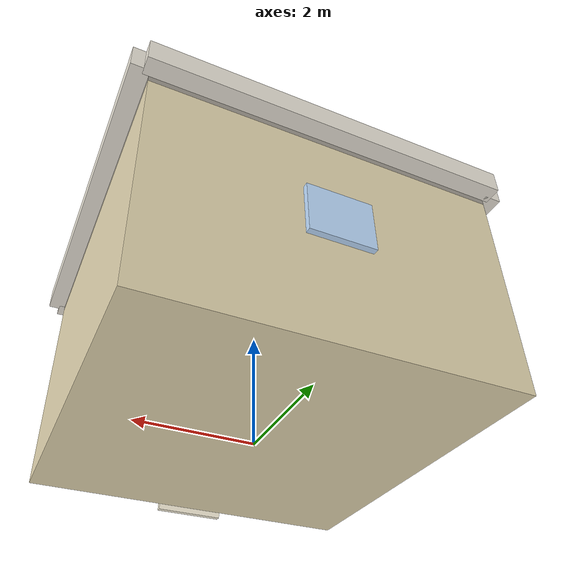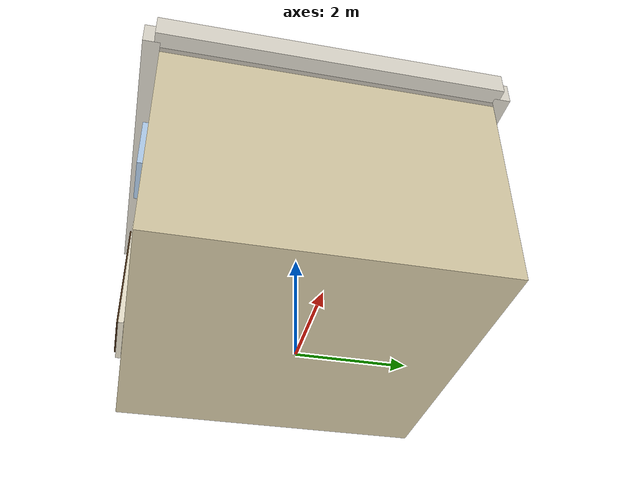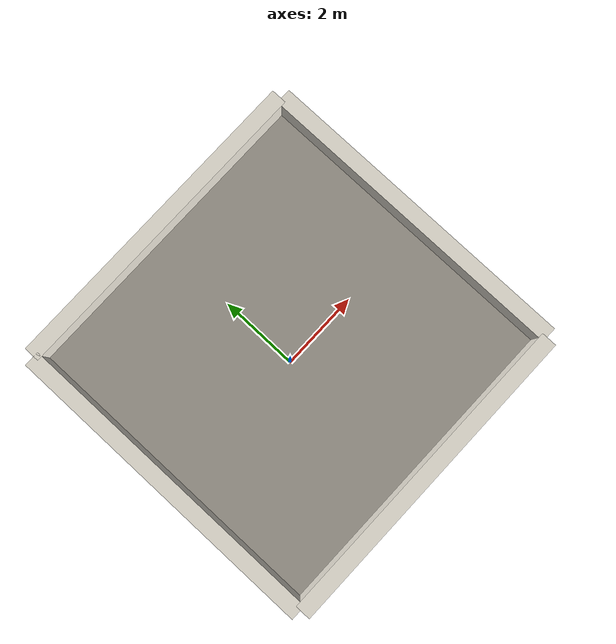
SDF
<?xml version="1.0" ?>
<!-- House Type B: 6x6m cream residential, flat roof with parapet, front faces -Y -->
<sdf version="1.6">
  <model name="house_type_b">
    <static>true</static>
    <link name="link">

      <collision name="col">
        <pose>0 0 2.15 0 0 0</pose>
        <geometry><box><size>6 6 4.3</size></box></geometry>
      </collision>

      <!-- Main walls 6x6x3.8m -->
      <visual name="walls">
        <pose>0 0 1.9 0 0 0</pose>
        <geometry><box><size>6 6 3.8</size></box></geometry>
        <material>
          <ambient>0.90 0.85 0.70 1</ambient>
          <diffuse>0.90 0.85 0.70 1</diffuse>
          <specular>0.05 0.05 0.05 1</specular>
        </material>
      </visual>

      <visual name="roof_surface">
        <pose>0 0 3.85 0 0 0</pose>
        <geometry><box><size>6.0 6.0 0.1</size></box></geometry>
        <material><ambient>0.62 0.60 0.56 1</ambient><diffuse>0.62 0.60 0.56 1</diffuse></material>
      </visual>

      <!-- Parapet: front at Y=-3.0 → parapet at Y=-3.15 -->
      <visual name="parapet_front">
        <pose>0 -3.15 4.1 0 0 0</pose>
        <geometry><box><size>6.2 0.3 0.4</size></box></geometry>
        <material><ambient>0.93 0.91 0.86 1</ambient><diffuse>0.93 0.91 0.86 1</diffuse></material>
      </visual>
      <visual name="parapet_back">
        <pose>0 3.15 4.1 0 0 0</pose>
        <geometry><box><size>6.2 0.3 0.4</size></box></geometry>
        <material><ambient>0.93 0.91 0.86 1</ambient><diffuse>0.93 0.91 0.86 1</diffuse></material>
      </visual>
      <visual name="parapet_left">
        <pose>-3.15 0 4.1 0 0 0</pose>
        <geometry><box><size>0.3 6.2 0.4</size></box></geometry>
        <material><ambient>0.93 0.91 0.86 1</ambient><diffuse>0.93 0.91 0.86 1</diffuse></material>
      </visual>
      <visual name="parapet_right">
        <pose>3.15 0 4.1 0 0 0</pose>
        <geometry><box><size>0.3 6.2 0.4</size></box></geometry>
        <material><ambient>0.93 0.91 0.86 1</ambient><diffuse>0.93 0.91 0.86 1</diffuse></material>
      </visual>

      <visual name="door">
        <pose>0 -3.06 0.9 0 0 0</pose>
        <geometry><box><size>1.0 0.12 1.9</size></box></geometry>
        <material><ambient>0.28 0.18 0.08 1</ambient><diffuse>0.28 0.18 0.08 1</diffuse></material>
      </visual>
      <visual name="door_surround">
        <pose>0 -3.045 0.95 0 0 0</pose>
        <geometry><box><size>1.2 0.09 2.1</size></box></geometry>
        <material><ambient>1.0 0.97 0.88 1</ambient><diffuse>1.0 0.97 0.88 1</diffuse></material>
      </visual>

      <visual name="win_front_left">
        <pose>-2.0 -3.06 2.2 0 0 0</pose>
        <geometry><box><size>0.9 0.1 0.9</size></box></geometry>
        <material>
          <ambient>0.75 0.87 1.0 1</ambient><diffuse>0.75 0.87 1.0 1</diffuse>
          <specular>0.6 0.6 0.6 1</specular>
        </material>
      </visual>
      <visual name="win_front_right">
        <pose>2.0 -3.06 2.2 0 0 0</pose>
        <geometry><box><size>0.9 0.1 0.9</size></box></geometry>
        <material>
          <ambient>0.75 0.87 1.0 1</ambient><diffuse>0.75 0.87 1.0 1</diffuse>
          <specular>0.6 0.6 0.6 1</specular>
        </material>
      </visual>
      <visual name="win_back">
        <pose>0 3.06 2.2 0 0 0</pose>
        <geometry><box><size>1.1 0.1 0.9</size></box></geometry>
        <material>
          <ambient>0.75 0.87 1.0 1</ambient><diffuse>0.75 0.87 1.0 1</diffuse>
          <specular>0.6 0.6 0.6 1</specular>
        </material>
      </visual>

      <visual name="qr_code">
        <pose>0 -3.035 2.0 0 0 0</pose>
        <geometry><box><size>0.5 0.05 0.5</size></box></geometry>
        <material><ambient>1 1 1 1</ambient><diffuse>1 1 1 1</diffuse></material>
      </visual>

    </link>
  </model>
</sdf>
